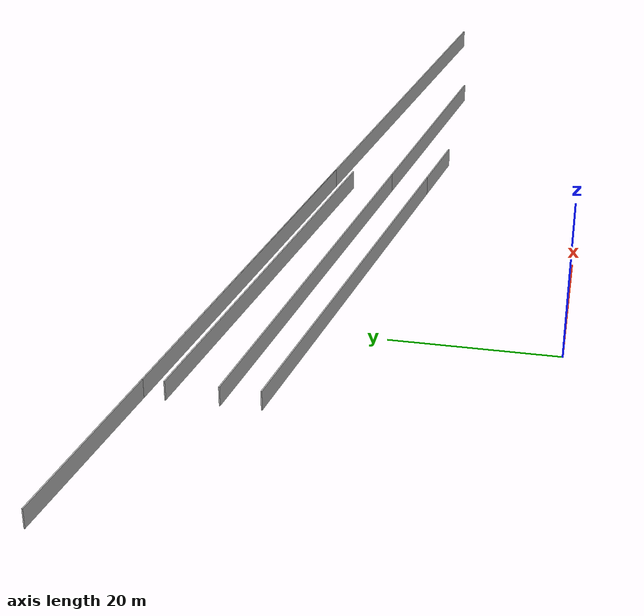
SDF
<?xml version="1.0" ?>
<sdf version="1.6">
  <model name="sps_0806">
    <pose frame="">0 0 0 0 -0 0</pose>
    <static>1</static>
    <self_collide>0</self_collide>
    <allow_auto_disable>0</allow_auto_disable>
    <link name="Wall6">
      <kinematic>0</kinematic>
      <gravity>1</gravity>
      <self_collide>0</self_collide>
      <collision name="collision">
        <geometry>
          <box>
            <size>51.584 0.15 2.5</size>
          </box>
        </geometry>
        <pose frame="">0 0 0 0 -0 0</pose>
      </collision>
      <visual name="visual">
        <geometry>
          <box>
            <size>51.584 0.15 2.5</size>
          </box>
        </geometry>
        <pose frame="">0 0 0 0 -0 0</pose>
        <cast_shadows>1</cast_shadows>
        <transparency>0.0</transparency>
      </visual>
      <pose frame="">9.46944 38.2738 1.25 0 0 -0.248456</pose>
    </link>
    <link name="Wall405">
      <kinematic>0</kinematic>
      <gravity>1</gravity>
      <self_collide>0</self_collide>
      <collision name="collision">
        <geometry>
          <box>
            <size>51.5614 0.15 2.5</size>
          </box>
        </geometry>
        <pose frame="">0 0 0 0 -0 0</pose>
      </collision>
      <visual name="visual">
        <geometry>
          <box>
            <size>51.5614 0.15 2.5</size>
          </box>
        </geometry>
        <pose frame="">0 0 0 0 -0 0</pose>
        <cast_shadows>1</cast_shadows>
        <transparency>0.0</transparency>
      </visual>
      <pose frame="">9.46944 35.8719 1.25 0 -0 2.89487</pose>
    </link>
    <link name="Wall413">
      <kinematic>0</kinematic>
      <gravity>1</gravity>
      <self_collide>0</self_collide>
      <collision name="collision">
        <geometry>
          <box>
            <size>8.60691 0.15 2.5</size>
          </box>
        </geometry>
        <pose frame="">0 0 0 0 -0 0</pose>
      </collision>
      <visual name="visual">
        <geometry>
          <box>
            <size>8.60691 0.15 2.5</size>
          </box>
        </geometry>
        <pose frame="">0 0 0 0 -0 0</pose>
        <cast_shadows>1</cast_shadows>
        <transparency>0.0</transparency>
      </visual>
      <pose frame="">38.6613 18.8669 1.25 0 -0 2.91334</pose>
    </link>
    <link name="Wall414">
      <kinematic>0</kinematic>
      <gravity>1</gravity>
      <self_collide>0</self_collide>
      <collision name="collision">
        <geometry>
          <box>
            <size>51.3314 0.15 2.5</size>
          </box>
        </geometry>
        <pose frame="">0 0 0 0 -0 0</pose>
      </collision>
      <visual name="visual">
        <geometry>
          <box>
            <size>51.3314 0.15 2.5</size>
          </box>
        </geometry>
        <pose frame="">0 0 0 0 -0 0</pose>
        <cast_shadows>1</cast_shadows>
        <transparency>0.0</transparency>
      </visual>
      <pose frame="">9.46944 25.6482 1.25 0 -0 2.91334</pose>
    </link>
    <link name="Wall418">
      <kinematic>0</kinematic>
      <gravity>1</gravity>
      <self_collide>0</self_collide>
      <collision name="collision">
        <geometry>
          <box>
            <size>29.1355 0.15 2.5</size>
          </box>
        </geometry>
        <pose frame="">0 0 0 0 -0 0</pose>
      </collision>
      <visual name="visual">
        <geometry>
          <box>
            <size>29.1355 0.15 2.5</size>
          </box>
        </geometry>
        <pose frame="">0 0 0 0 -0 0</pose>
        <cast_shadows>1</cast_shadows>
        <transparency>0.0</transparency>
      </visual>
      <pose frame="">48.6593 21.1895 1.25 0 -0 2.91334</pose>
    </link>
    <link name="Wall419">
      <kinematic>0</kinematic>
      <gravity>1</gravity>
      <self_collide>0</self_collide>
      <collision name="collision">
        <geometry>
          <box>
            <size>51.3314 0.15 2.5</size>
          </box>
        </geometry>
        <pose frame="">0 0 0 0 -0 0</pose>
      </collision>
      <visual name="visual">
        <geometry>
          <box>
            <size>51.3314 0.15 2.5</size>
          </box>
        </geometry>
        <pose frame="">0 0 0 0 -0 0</pose>
        <cast_shadows>1</cast_shadows>
        <transparency>0.0</transparency>
      </visual>
      <pose frame="">9.46944 30.2935 1.25 0 -0 2.91334</pose>
    </link>
    <link name="Wall1900">
      <kinematic>0</kinematic>
      <gravity>1</gravity>
      <self_collide>0</self_collide>
      <collision name="collision">
        <geometry>
          <box>
            <size>123.843 0.15 2.5</size>
          </box>
        </geometry>
        <pose frame="">0 0 0 0 -0 0</pose>
      </collision>
      <visual name="visual">
        <geometry>
          <box>
            <size>123.843 0.15 2.5</size>
          </box>
        </geometry>
        <pose frame="">0 0 0 0 -0 0</pose>
        <cast_shadows>1</cast_shadows>
        <transparency>0.0</transparency>
      </visual>
      <pose frame="">21.5783 35.2019 1.25 0 0 -0.248456</pose>
    </link>
  </model>
</sdf>
